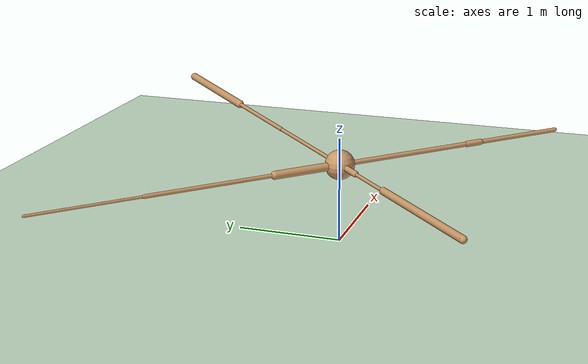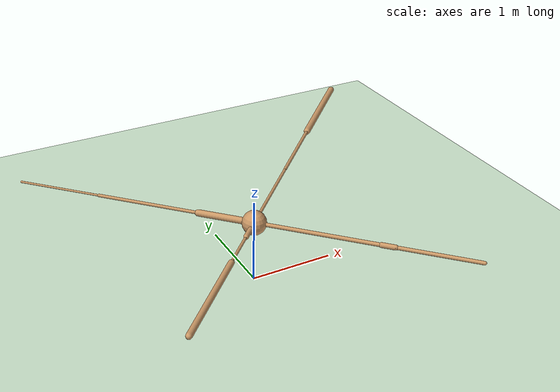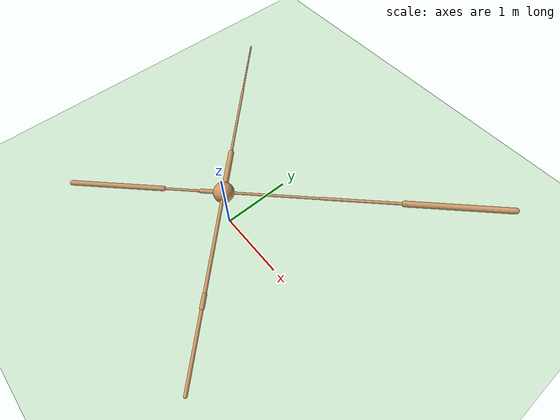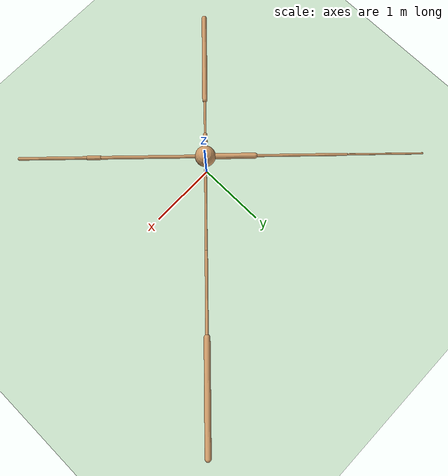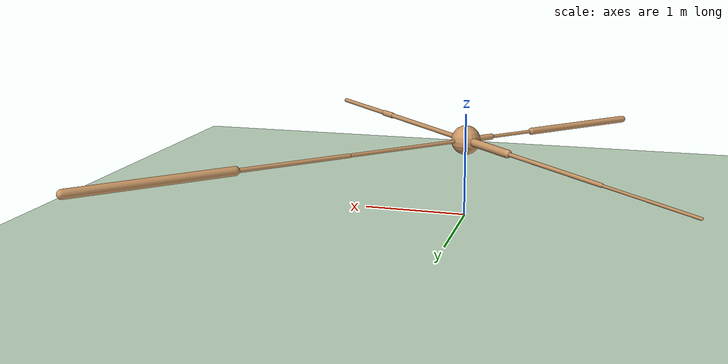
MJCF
<mujoco model="ant">
  <compiler angle="degree" coordinate="local" inertiafromgeom="true" />
  <option integrator="RK4" timestep="0.01" />
  <custom>
    <numeric data="0.0 0.0 0.55 1.0 0.0 0.0 0.0 0.0 1.0 0.0 -1.0 0.0 -1.0 0.0 1.0" name="init_qpos" />
  </custom>
  <default>
    <joint armature="1" damping="1" limited="true" />
    <geom conaffinity="0" condim="3" density="5.0" friction="1 0.5 0.5" margin="0.01" rgba="0.8 0.6 0.4 1" />
  </default>
  <asset>
    <texture builtin="gradient" height="100" rgb1="1 1 1" rgb2="0 0 0" type="skybox" width="100" />
    <texture builtin="flat" height="1278" mark="cross" markrgb="1 1 1" name="texgeom" random="0.01" rgb1="0.8 0.6 0.4" rgb2="0.8 0.6 0.4" type="cube" width="127" />
    <texture builtin="checker" height="100" name="texplane" rgb1="0 0 0" rgb2="0.8 0.8 0.8" type="2d" width="100" />
    <material name="MatPlane" reflectance="0.5" shininess="1" specular="1" texrepeat="60 60" texture="texplane" />
    <material name="geom" texture="texgeom" texuniform="true" />
  </asset>
  <worldbody>
    <light cutoff="100" diffuse="1 1 1" dir="-0 0 -1.3" directional="true" exponent="1" pos="0 0 1.3" specular=".1 .1 .1" />
    <geom conaffinity="1" condim="3" material="MatPlane" name="floor" pos="0 0 0" rgba="0.8 0.9 0.8 1" size="40 40 40" type="plane" />
    <body name="torso" pos="0 0 0.75">
      <camera name="track" mode="trackcom" pos="0 -11 5" xyaxes="1 0 0 0 0.5 1" />
      <geom name="torso_geom" pos="0 0 0" size="0.14031460881233215" type="sphere" />
      <joint armature="0" damping="0" limited="false" margin="0.01" name="root" pos="0 0 0" type="free" />
      <body name="front_left_leg" pos="0 0 0">
        <geom fromto="0 0 0 0.892297089099884 0.892297089099884 0" name="aux_1_geom" size="0.017464157193899155" type="capsule" />
        <body name="aux_1" pos="0.892297089099884 0.892297089099884 0">
          <joint axis="0 0 1" name="hip_1" pos="0.0 0.0 0.0" range="-30 30" type="hinge" />
          <geom fromto="0 0 0 0.7651360034942627 0.7651360034942627 0" name="left_leg_geom" size="0.020289182662963867" type="capsule" />
          <body name="left_leg_geom_aux" pos="0.7651360034942627 0.7651360034942627 0">
            <joint axis="-1 1 0" name="ankle_1" pos="0.0 0.0 0.0" range="30 70" type="hinge" />
            <geom fromto="0 0 0 0.991637110710144 0.991637110710144 0" name="left_ankle_geom" size="0.041514020413160324" type="capsule" />
          </body>
        </body>
      </body>
      <body name="front_right_leg" pos="0 0 0">
        <geom fromto="0 0 0 -0.4634864330291748 0.4634864330291748 0" name="aux_2_geom" size="0.03901557996869087" type="capsule" />
        <body name="aux_2" pos="-0.4634864330291748 0.4634864330291748 0">
          <joint axis="0 0 1" name="hip_2" pos="0.0 0.0 0.0" range="-30 30" type="hinge" />
          <geom fromto="0 0 0 -0.8624276518821716 0.8624276518821716 0" name="right_leg_geom" size="0.01860876753926277" type="capsule" />
          <body name="right_leg_geom_aux" pos="-0.8624276518821716 0.8624276518821716 0">
            <joint axis="1 1 0" name="ankle_2" pos="0.0 0.0 0.0" range="-70 -30" type="hinge" />
            <geom fromto="0 0 0 -0.7143751382827759 0.7143751382827759 0" name="right_ankle_geom" size="0.012449376285076141" type="capsule" />
          </body>
        </body>
      </body>
      <body name="back_leg" pos="0 0 0">
        <geom fromto="0 0 0 -0.21156197786331177 -0.21156197786331177 0" name="aux_3_geom" size="0.028963187709450722" type="capsule" />
        <body name="aux_3" pos="-0.21156197786331177 -0.21156197786331177 0">
          <joint axis="0 0 1" name="hip_3" pos="0.0 0.0 0.0" range="-30 30" type="hinge" />
          <geom fromto="0 0 0 -0.35197368264198303 -0.35197368264198303 0" name="back_leg_geom" size="0.01629609614610672" type="capsule" />
          <body name="back_leg_geom_aux" pos="-0.35197368264198303 -0.35197368264198303 0">
            <joint axis="-1 1 0" name="ankle_3" pos="0.0 0.0 0.0" range="-70 -30" type="hinge" />
            <geom fromto="0 0 0 -0.8605437278747559 -0.8605437278747559 0" name="third_ankle_geom" size="0.03379274532198906" type="capsule" />
          </body>
        </body>
      </body>
      <body name="right_back_leg" pos="0 0 0">
        <geom fromto="0 0 0 0.9911925196647644 -0.9911925196647644 0" name="aux_4_geom" size="0.02293057180941105" type="capsule" />
        <body name="aux_4" pos="0.9911925196647644 -0.9911925196647644 0">
          <joint axis="0 0 1" name="hip_4" pos="0.0 0.0 0.0" range="-30 30" type="hinge" />
          <geom fromto="0 0 0 0.10759318619966507 -0.10759318619966507 0" name="rightback_leg_geom" size="0.029836352914571762" type="capsule" />
          <body name="rightback_leg_geom_aux" pos="0.10759318619966507 -0.10759318619966507 0">
            <joint axis="1 1 0" name="ankle_4" pos="0.0 0.0 0.0" range="30 70" type="hinge" />
            <geom fromto="0 0 0 0.645073652267456 -0.645073652267456 0" name="fourth_ankle_geom" size="0.021737780421972275" type="capsule" />
          </body>
        </body>
      </body>
    </body>
  </worldbody>
  <actuator>
    <motor ctrllimited="true" ctrlrange="-1.0 1.0" joint="hip_4" gear="150" />
    <motor ctrllimited="true" ctrlrange="-1.0 1.0" joint="ankle_4" gear="150" />
    <motor ctrllimited="true" ctrlrange="-1.0 1.0" joint="hip_1" gear="150" />
    <motor ctrllimited="true" ctrlrange="-1.0 1.0" joint="ankle_1" gear="150" />
    <motor ctrllimited="true" ctrlrange="-1.0 1.0" joint="hip_2" gear="150" />
    <motor ctrllimited="true" ctrlrange="-1.0 1.0" joint="ankle_2" gear="150" />
    <motor ctrllimited="true" ctrlrange="-1.0 1.0" joint="hip_3" gear="150" />
    <motor ctrllimited="true" ctrlrange="-1.0 1.0" joint="ankle_3" gear="150" />
  </actuator>
</mujoco>
